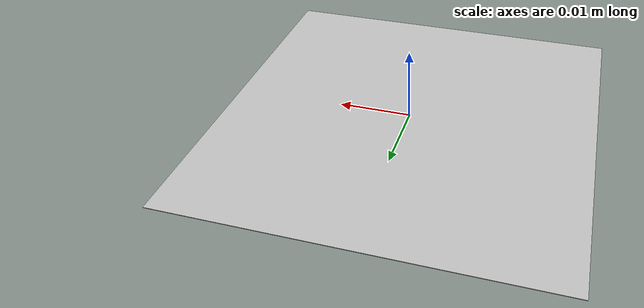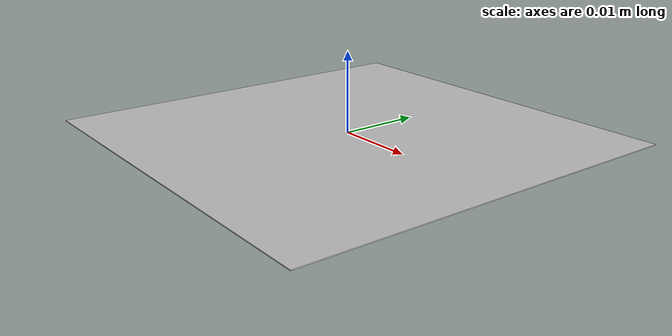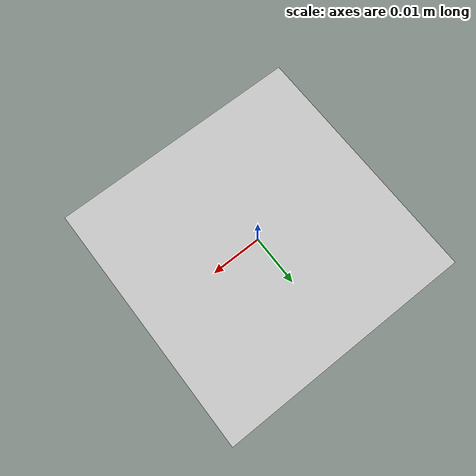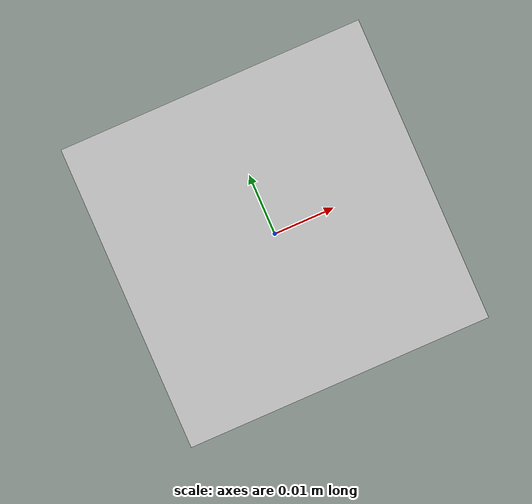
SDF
<?xml version="1.0" ?>
<sdf version="1.5">
  <model name="tag$(arg id)">
    <pose>0 0 0 0 0 0</pose>
    <link name="apriltag">
      <visual name="marked">
        <pose>0 0 0.0 0 0 0</pose>
        <geometry>
          <box>
            <size>0.0508 0.0508 0.0001</size>
          </box>
        </geometry>
        <material>
          <ambient>.8 .8 .8 1</ambient>
          <diffuse>.8 .8 .8 1</diffuse>
          <specular>.8 .8 .8 1</specular>
          <emissive>0 0 0 0</emissive>
        </material>
      </visual>
    </link>
    <joint name="world_fix" type="fixed">
        <parent>world</parent>
        <child>tag$(arg id)::apriltag</child>
    </joint>
  </model>
</sdf>
